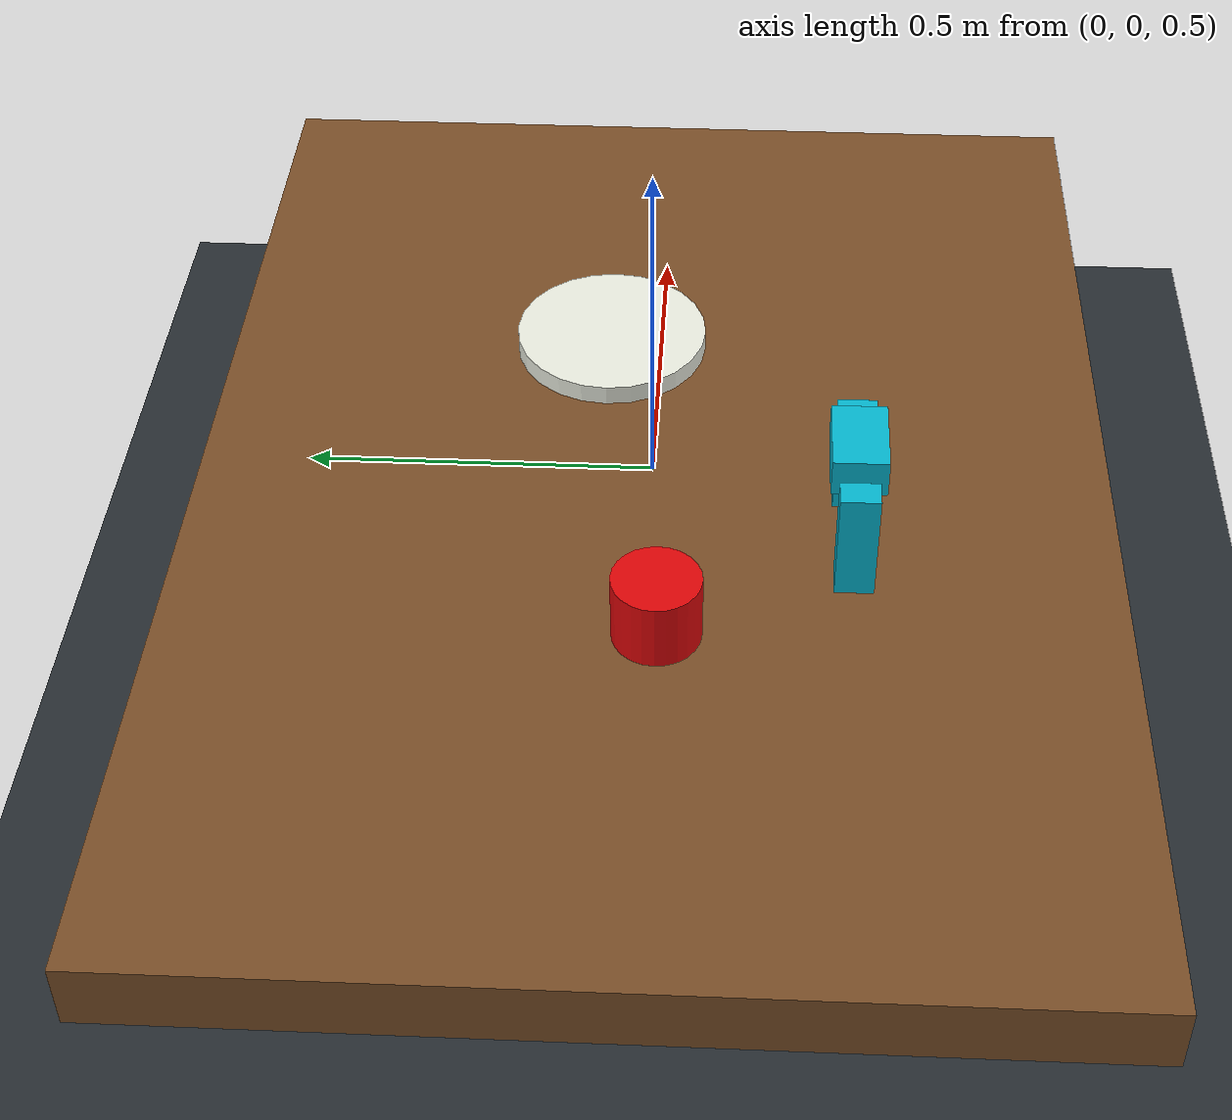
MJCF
<mujoco model="p1_v6_constraint_assisted_tabletop">
  <compiler angle="radian"/>
  <option timestep="0.002" gravity="0 0 -9.81" integrator="Euler" noslip_iterations="2" iterations="50"/>
  <worldbody>
    <light directional="true" pos="0 -1 3" dir="0 0 -1" diffuse="1 1 1"/>
    <geom name="floor" type="plane" size="3 3 0.1" rgba=".16 .18 .20 1"/>
    <geom name="table" type="box" size=".92 .66 0.05" pos="0 0 0.45" rgba=".48 .31 .16 1"/>
    <body name="target" pos="0.291161 0.077337 0.515000">
      <geom name="target_geom" type="cylinder" size=".145 .015" rgba=".92 .93 .88 1" contype="1" conaffinity="1"/>
    </body>
    <body name="object" pos="-0.348145 -0.020563 0.561316">
      <freejoint name="object_free"/>
      <geom name="object_geom" type="cylinder" size="0.061316 0.050279"
            rgba=".88 .025 .035 1" mass="0.234338" friction="0.5592 .01 .001"/>
    </body>
    <body name="gripper" mocap="true" pos="-0.348145 -0.270563 0.841316">
      <geom name="palm" type="box" size=".055 .035 .025" rgba=".02 .72 .82 1" contype="0" conaffinity="0"/>
      <geom name="finger_left" type="box" size=".018 .025 .075" pos="-.080 0 -.075" rgba=".02 .72 .82 1" contype="0" conaffinity="0"/>
      <geom name="finger_right" type="box" size=".018 .025 .075" pos=".080 0 -.075" rgba=".02 .72 .82 1" contype="0" conaffinity="0"/>
    </body>
  </worldbody>
  <equality>
    <weld name="grasp_weld" body1="gripper" body2="object" active="false" solref="0.002 1" solimp="0.9 0.95 0.001"/>
  </equality>
</mujoco>
